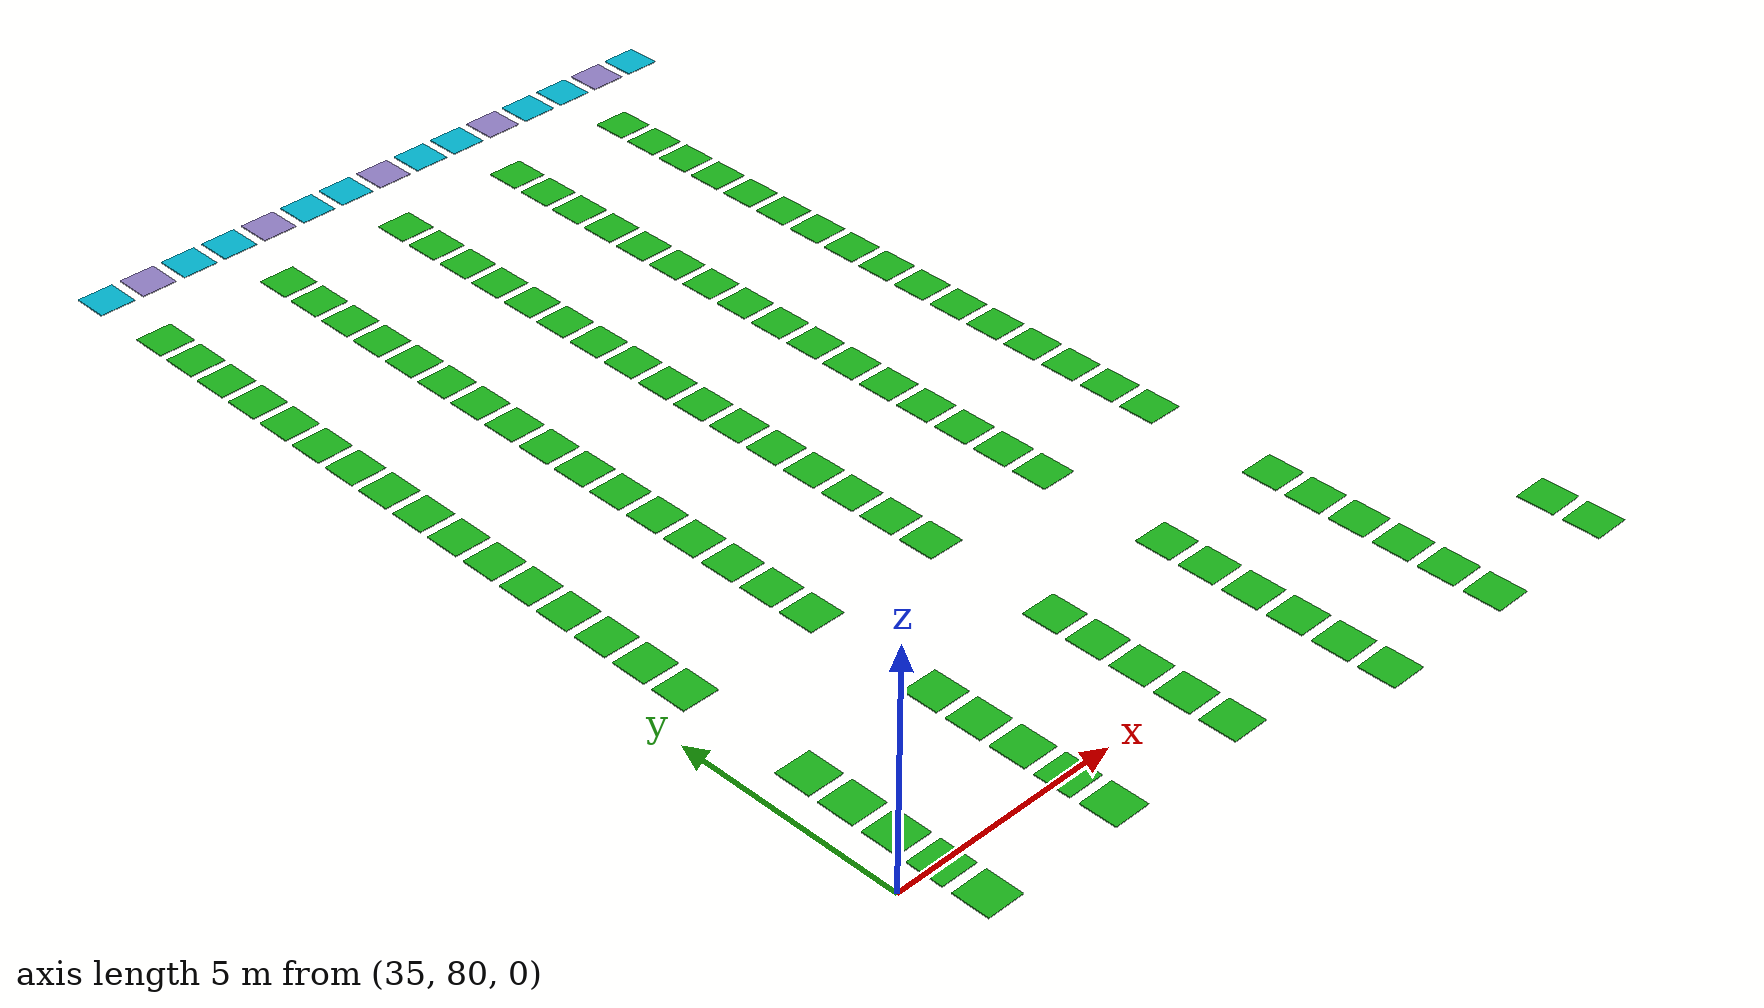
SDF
<sdf version="1.10">
 <world name="my_map">
  <model name="charging_024">
   <static>true</static>
   <pose>36.0
        103.0
        0.02
        0 0 0</pose>
   <link name="link">
    <visual name="visual">
     <geometry><box><size>0.8
                0.8
                0.02</size></box></geometry>
     <material><ambient>0.00 0.70 0.80 1</ambient><diffuse>0.00 0.70 0.80 1</diffuse></material>
    </visual>
   </link>
  </model>
  <model name="charge_queue_012">
   <static>true</static>
   <pose>37.0
        103.0
        0.02
        0 0 0</pose>
   <link name="link">
    <visual name="visual">
     <geometry><box><size>0.8
                0.8
                0.02</size></box></geometry>
     <material><ambient>0.56 0.49 0.76 1</ambient><diffuse>0.56 0.49 0.76 1</diffuse></material>
    </visual>
   </link>
  </model>
  <model name="charging_025">
   <static>true</static>
   <pose>38.0
        103.0
        0.02
        0 0 0</pose>
   <link name="link">
    <visual name="visual">
     <geometry><box><size>0.8
                0.8
                0.02</size></box></geometry>
     <material><ambient>0.00 0.70 0.80 1</ambient><diffuse>0.00 0.70 0.80 1</diffuse></material>
    </visual>
   </link>
  </model>
  <model name="charging_026">
   <static>true</static>
   <pose>39.0
        103.0
        0.02
        0 0 0</pose>
   <link name="link">
    <visual name="visual">
     <geometry><box><size>0.8
                0.8
                0.02</size></box></geometry>
     <material><ambient>0.00 0.70 0.80 1</ambient><diffuse>0.00 0.70 0.80 1</diffuse></material>
    </visual>
   </link>
  </model>
  <model name="charge_queue_013">
   <static>true</static>
   <pose>40.0
        103.0
        0.02
        0 0 0</pose>
   <link name="link">
    <visual name="visual">
     <geometry><box><size>0.8
                0.8
                0.02</size></box></geometry>
     <material><ambient>0.56 0.49 0.76 1</ambient><diffuse>0.56 0.49 0.76 1</diffuse></material>
    </visual>
   </link>
  </model>
  <model name="charging_027">
   <static>true</static>
   <pose>41.0
        103.0
        0.02
        0 0 0</pose>
   <link name="link">
    <visual name="visual">
     <geometry><box><size>0.8
                0.8
                0.02</size></box></geometry>
     <material><ambient>0.00 0.70 0.80 1</ambient><diffuse>0.00 0.70 0.80 1</diffuse></material>
    </visual>
   </link>
  </model>
  <model name="charging_028">
   <static>true</static>
   <pose>42.0
        103.0
        0.02
        0 0 0</pose>
   <link name="link">
    <visual name="visual">
     <geometry><box><size>0.8
                0.8
                0.02</size></box></geometry>
     <material><ambient>0.00 0.70 0.80 1</ambient><diffuse>0.00 0.70 0.80 1</diffuse></material>
    </visual>
   </link>
  </model>
  <model name="charge_queue_014">
   <static>true</static>
   <pose>43.0
        103.0
        0.02
        0 0 0</pose>
   <link name="link">
    <visual name="visual">
     <geometry><box><size>0.8
                0.8
                0.02</size></box></geometry>
     <material><ambient>0.56 0.49 0.76 1</ambient><diffuse>0.56 0.49 0.76 1</diffuse></material>
    </visual>
   </link>
  </model>
  <model name="charging_029">
   <static>true</static>
   <pose>44.0
        103.0
        0.02
        0 0 0</pose>
   <link name="link">
    <visual name="visual">
     <geometry><box><size>0.8
                0.8
                0.02</size></box></geometry>
     <material><ambient>0.00 0.70 0.80 1</ambient><diffuse>0.00 0.70 0.80 1</diffuse></material>
    </visual>
   </link>
  </model>
  <model name="charging_030">
   <static>true</static>
   <pose>45.0
        103.0
        0.02
        0 0 0</pose>
   <link name="link">
    <visual name="visual">
     <geometry><box><size>0.8
                0.8
                0.02</size></box></geometry>
     <material><ambient>0.00 0.70 0.80 1</ambient><diffuse>0.00 0.70 0.80 1</diffuse></material>
    </visual>
   </link>
  </model>
  <model name="charge_queue_015">
   <static>true</static>
   <pose>46.0
        103.0
        0.02
        0 0 0</pose>
   <link name="link">
    <visual name="visual">
     <geometry><box><size>0.8
                0.8
                0.02</size></box></geometry>
     <material><ambient>0.56 0.49 0.76 1</ambient><diffuse>0.56 0.49 0.76 1</diffuse></material>
    </visual>
   </link>
  </model>
  <model name="charging_031">
   <static>true</static>
   <pose>47.0
        103.0
        0.02
        0 0 0</pose>
   <link name="link">
    <visual name="visual">
     <geometry><box><size>0.8
                0.8
                0.02</size></box></geometry>
     <material><ambient>0.00 0.70 0.80 1</ambient><diffuse>0.00 0.70 0.80 1</diffuse></material>
    </visual>
   </link>
  </model>
  <model name="charging_032">
   <static>true</static>
   <pose>48.0
        103.0
        0.02
        0 0 0</pose>
   <link name="link">
    <visual name="visual">
     <geometry><box><size>0.8
                0.8
                0.02</size></box></geometry>
     <material><ambient>0.00 0.70 0.80 1</ambient><diffuse>0.00 0.70 0.80 1</diffuse></material>
    </visual>
   </link>
  </model>
  <model name="charge_queue_016">
   <static>true</static>
   <pose>49.0
        103.0
        0.02
        0 0 0</pose>
   <link name="link">
    <visual name="visual">
     <geometry><box><size>0.8
                0.8
                0.02</size></box></geometry>
     <material><ambient>0.56 0.49 0.76 1</ambient><diffuse>0.56 0.49 0.76 1</diffuse></material>
    </visual>
   </link>
  </model>
  <model name="charging_033">
   <static>true</static>
   <pose>50.0
        103.0
        0.02
        0 0 0</pose>
   <link name="link">
    <visual name="visual">
     <geometry><box><size>0.8
                0.8
                0.02</size></box></geometry>
     <material><ambient>0.00 0.70 0.80 1</ambient><diffuse>0.00 0.70 0.80 1</diffuse></material>
    </visual>
   </link>
  </model>
  <model name="shelf_012">
   <static>true</static>
   <pose>36.0
        101.0
        0.02
        0 0 0</pose>
   <link name="link">
    <visual name="visual">
     <geometry><box><size>0.8
                0.8
                0.02</size></box></geometry>
     <material><ambient>0.10 0.70 0.10 1</ambient><diffuse>0.10 0.70 0.10 1</diffuse></material>
    </visual>
   </link>
  </model>
  <model name="shelf_013">
   <static>true</static>
   <pose>39.0
        101.0
        0.02
        0 0 0</pose>
   <link name="link">
    <visual name="visual">
     <geometry><box><size>0.8
                0.8
                0.02</size></box></geometry>
     <material><ambient>0.10 0.70 0.10 1</ambient><diffuse>0.10 0.70 0.10 1</diffuse></material>
    </visual>
   </link>
  </model>
  <model name="shelf_014">
   <static>true</static>
   <pose>42.0
        101.0
        0.02
        0 0 0</pose>
   <link name="link">
    <visual name="visual">
     <geometry><box><size>0.8
                0.8
                0.02</size></box></geometry>
     <material><ambient>0.10 0.70 0.10 1</ambient><diffuse>0.10 0.70 0.10 1</diffuse></material>
    </visual>
   </link>
  </model>
  <model name="shelf_015">
   <static>true</static>
   <pose>45.0
        101.0
        0.02
        0 0 0</pose>
   <link name="link">
    <visual name="visual">
     <geometry><box><size>0.8
                0.8
                0.02</size></box></geometry>
     <material><ambient>0.10 0.70 0.10 1</ambient><diffuse>0.10 0.70 0.10 1</diffuse></material>
    </visual>
   </link>
  </model>
  <model name="shelf_016">
   <static>true</static>
   <pose>48.0
        101.0
        0.02
        0 0 0</pose>
   <link name="link">
    <visual name="visual">
     <geometry><box><size>0.8
                0.8
                0.02</size></box></geometry>
     <material><ambient>0.10 0.70 0.10 1</ambient><diffuse>0.10 0.70 0.10 1</diffuse></material>
    </visual>
   </link>
  </model>
  <model name="shelf_037">
   <static>true</static>
   <pose>36.0
        100.0
        0.02
        0 0 0</pose>
   <link name="link">
    <visual name="visual">
     <geometry><box><size>0.8
                0.8
                0.02</size></box></geometry>
     <material><ambient>0.10 0.70 0.10 1</ambient><diffuse>0.10 0.70 0.10 1</diffuse></material>
    </visual>
   </link>
  </model>
  <model name="shelf_038">
   <static>true</static>
   <pose>39.0
        100.0
        0.02
        0 0 0</pose>
   <link name="link">
    <visual name="visual">
     <geometry><box><size>0.8
                0.8
                0.02</size></box></geometry>
     <material><ambient>0.10 0.70 0.10 1</ambient><diffuse>0.10 0.70 0.10 1</diffuse></material>
    </visual>
   </link>
  </model>
  <model name="shelf_039">
   <static>true</static>
   <pose>42.0
        100.0
        0.02
        0 0 0</pose>
   <link name="link">
    <visual name="visual">
     <geometry><box><size>0.8
                0.8
                0.02</size></box></geometry>
     <material><ambient>0.10 0.70 0.10 1</ambient><diffuse>0.10 0.70 0.10 1</diffuse></material>
    </visual>
   </link>
  </model>
  <model name="shelf_040">
   <static>true</static>
   <pose>45.0
        100.0
        0.02
        0 0 0</pose>
   <link name="link">
    <visual name="visual">
     <geometry><box><size>0.8
                0.8
                0.02</size></box></geometry>
     <material><ambient>0.10 0.70 0.10 1</ambient><diffuse>0.10 0.70 0.10 1</diffuse></material>
    </visual>
   </link>
  </model>
  <model name="shelf_041">
   <static>true</static>
   <pose>48.0
        100.0
        0.02
        0 0 0</pose>
   <link name="link">
    <visual name="visual">
     <geometry><box><size>0.8
                0.8
                0.02</size></box></geometry>
     <material><ambient>0.10 0.70 0.10 1</ambient><diffuse>0.10 0.70 0.10 1</diffuse></material>
    </visual>
   </link>
  </model>
  <model name="shelf_062">
   <static>true</static>
   <pose>36.0
        99.0
        0.02
        0 0 0</pose>
   <link name="link">
    <visual name="visual">
     <geometry><box><size>0.8
                0.8
                0.02</size></box></geometry>
     <material><ambient>0.10 0.70 0.10 1</ambient><diffuse>0.10 0.70 0.10 1</diffuse></material>
    </visual>
   </link>
  </model>
  <model name="shelf_063">
   <static>true</static>
   <pose>39.0
        99.0
        0.02
        0 0 0</pose>
   <link name="link">
    <visual name="visual">
     <geometry><box><size>0.8
                0.8
                0.02</size></box></geometry>
     <material><ambient>0.10 0.70 0.10 1</ambient><diffuse>0.10 0.70 0.10 1</diffuse></material>
    </visual>
   </link>
  </model>
  <model name="shelf_064">
   <static>true</static>
   <pose>42.0
        99.0
        0.02
        0 0 0</pose>
   <link name="link">
    <visual name="visual">
     <geometry><box><size>0.8
                0.8
                0.02</size></box></geometry>
     <material><ambient>0.10 0.70 0.10 1</ambient><diffuse>0.10 0.70 0.10 1</diffuse></material>
    </visual>
   </link>
  </model>
  <model name="shelf_065">
   <static>true</static>
   <pose>45.0
        99.0
        0.02
        0 0 0</pose>
   <link name="link">
    <visual name="visual">
     <geometry><box><size>0.8
                0.8
                0.02</size></box></geometry>
     <material><ambient>0.10 0.70 0.10 1</ambient><diffuse>0.10 0.70 0.10 1</diffuse></material>
    </visual>
   </link>
  </model>
  <model name="shelf_066">
   <static>true</static>
   <pose>48.0
        99.0
        0.02
        0 0 0</pose>
   <link name="link">
    <visual name="visual">
     <geometry><box><size>0.8
                0.8
                0.02</size></box></geometry>
     <material><ambient>0.10 0.70 0.10 1</ambient><diffuse>0.10 0.70 0.10 1</diffuse></material>
    </visual>
   </link>
  </model>
  <model name="shelf_087">
   <static>true</static>
   <pose>36.0
        98.0
        0.02
        0 0 0</pose>
   <link name="link">
    <visual name="visual">
     <geometry><box><size>0.8
                0.8
                0.02</size></box></geometry>
     <material><ambient>0.10 0.70 0.10 1</ambient><diffuse>0.10 0.70 0.10 1</diffuse></material>
    </visual>
   </link>
  </model>
  <model name="shelf_088">
   <static>true</static>
   <pose>39.0
        98.0
        0.02
        0 0 0</pose>
   <link name="link">
    <visual name="visual">
     <geometry><box><size>0.8
                0.8
                0.02</size></box></geometry>
     <material><ambient>0.10 0.70 0.10 1</ambient><diffuse>0.10 0.70 0.10 1</diffuse></material>
    </visual>
   </link>
  </model>
  <model name="shelf_089">
   <static>true</static>
   <pose>42.0
        98.0
        0.02
        0 0 0</pose>
   <link name="link">
    <visual name="visual">
     <geometry><box><size>0.8
                0.8
                0.02</size></box></geometry>
     <material><ambient>0.10 0.70 0.10 1</ambient><diffuse>0.10 0.70 0.10 1</diffuse></material>
    </visual>
   </link>
  </model>
  <model name="shelf_090">
   <static>true</static>
   <pose>45.0
        98.0
        0.02
        0 0 0</pose>
   <link name="link">
    <visual name="visual">
     <geometry><box><size>0.8
                0.8
                0.02</size></box></geometry>
     <material><ambient>0.10 0.70 0.10 1</ambient><diffuse>0.10 0.70 0.10 1</diffuse></material>
    </visual>
   </link>
  </model>
  <model name="shelf_091">
   <static>true</static>
   <pose>48.0
        98.0
        0.02
        0 0 0</pose>
   <link name="link">
    <visual name="visual">
     <geometry><box><size>0.8
                0.8
                0.02</size></box></geometry>
     <material><ambient>0.10 0.70 0.10 1</ambient><diffuse>0.10 0.70 0.10 1</diffuse></material>
    </visual>
   </link>
  </model>
  <model name="shelf_112">
   <static>true</static>
   <pose>36.0
        97.0
        0.02
        0 0 0</pose>
   <link name="link">
    <visual name="visual">
     <geometry><box><size>0.8
                0.8
                0.02</size></box></geometry>
     <material><ambient>0.10 0.70 0.10 1</ambient><diffuse>0.10 0.70 0.10 1</diffuse></material>
    </visual>
   </link>
  </model>
  <model name="shelf_113">
   <static>true</static>
   <pose>39.0
        97.0
        0.02
        0 0 0</pose>
   <link name="link">
    <visual name="visual">
     <geometry><box><size>0.8
                0.8
                0.02</size></box></geometry>
     <material><ambient>0.10 0.70 0.10 1</ambient><diffuse>0.10 0.70 0.10 1</diffuse></material>
    </visual>
   </link>
  </model>
  <model name="shelf_114">
   <static>true</static>
   <pose>42.0
        97.0
        0.02
        0 0 0</pose>
   <link name="link">
    <visual name="visual">
     <geometry><box><size>0.8
                0.8
                0.02</size></box></geometry>
     <material><ambient>0.10 0.70 0.10 1</ambient><diffuse>0.10 0.70 0.10 1</diffuse></material>
    </visual>
   </link>
  </model>
  <model name="shelf_115">
   <static>true</static>
   <pose>45.0
        97.0
        0.02
        0 0 0</pose>
   <link name="link">
    <visual name="visual">
     <geometry><box><size>0.8
                0.8
                0.02</size></box></geometry>
     <material><ambient>0.10 0.70 0.10 1</ambient><diffuse>0.10 0.70 0.10 1</diffuse></material>
    </visual>
   </link>
  </model>
  <model name="shelf_116">
   <static>true</static>
   <pose>48.0
        97.0
        0.02
        0 0 0</pose>
   <link name="link">
    <visual name="visual">
     <geometry><box><size>0.8
                0.8
                0.02</size></box></geometry>
     <material><ambient>0.10 0.70 0.10 1</ambient><diffuse>0.10 0.70 0.10 1</diffuse></material>
    </visual>
   </link>
  </model>
  <model name="shelf_137">
   <static>true</static>
   <pose>36.0
        96.0
        0.02
        0 0 0</pose>
   <link name="link">
    <visual name="visual">
     <geometry><box><size>0.8
                0.8
                0.02</size></box></geometry>
     <material><ambient>0.10 0.70 0.10 1</ambient><diffuse>0.10 0.70 0.10 1</diffuse></material>
    </visual>
   </link>
  </model>
  <model name="shelf_138">
   <static>true</static>
   <pose>39.0
        96.0
        0.02
        0 0 0</pose>
   <link name="link">
    <visual name="visual">
     <geometry><box><size>0.8
                0.8
                0.02</size></box></geometry>
     <material><ambient>0.10 0.70 0.10 1</ambient><diffuse>0.10 0.70 0.10 1</diffuse></material>
    </visual>
   </link>
  </model>
  <model name="shelf_139">
   <static>true</static>
   <pose>42.0
        96.0
        0.02
        0 0 0</pose>
   <link name="link">
    <visual name="visual">
     <geometry><box><size>0.8
                0.8
                0.02</size></box></geometry>
     <material><ambient>0.10 0.70 0.10 1</ambient><diffuse>0.10 0.70 0.10 1</diffuse></material>
    </visual>
   </link>
  </model>
  <model name="shelf_140">
   <static>true</static>
   <pose>45.0
        96.0
        0.02
        0 0 0</pose>
   <link name="link">
    <visual name="visual">
     <geometry><box><size>0.8
                0.8
                0.02</size></box></geometry>
     <material><ambient>0.10 0.70 0.10 1</ambient><diffuse>0.10 0.70 0.10 1</diffuse></material>
    </visual>
   </link>
  </model>
  <model name="shelf_141">
   <static>true</static>
   <pose>48.0
        96.0
        0.02
        0 0 0</pose>
   <link name="link">
    <visual name="visual">
     <geometry><box><size>0.8
                0.8
                0.02</size></box></geometry>
     <material><ambient>0.10 0.70 0.10 1</ambient><diffuse>0.10 0.70 0.10 1</diffuse></material>
    </visual>
   </link>
  </model>
  <model name="shelf_162">
   <static>true</static>
   <pose>36.0
        95.0
        0.02
        0 0 0</pose>
   <link name="link">
    <visual name="visual">
     <geometry><box><size>0.8
                0.8
                0.02</size></box></geometry>
     <material><ambient>0.10 0.70 0.10 1</ambient><diffuse>0.10 0.70 0.10 1</diffuse></material>
    </visual>
   </link>
  </model>
  <model name="shelf_163">
   <static>true</static>
   <pose>39.0
        95.0
        0.02
        0 0 0</pose>
   <link name="link">
    <visual name="visual">
     <geometry><box><size>0.8
                0.8
                0.02</size></box></geometry>
     <material><ambient>0.10 0.70 0.10 1</ambient><diffuse>0.10 0.70 0.10 1</diffuse></material>
    </visual>
   </link>
  </model>
  <model name="shelf_164">
   <static>true</static>
   <pose>42.0
        95.0
        0.02
        0 0 0</pose>
   <link name="link">
    <visual name="visual">
     <geometry><box><size>0.8
                0.8
                0.02</size></box></geometry>
     <material><ambient>0.10 0.70 0.10 1</ambient><diffuse>0.10 0.70 0.10 1</diffuse></material>
    </visual>
   </link>
  </model>
  <model name="shelf_165">
   <static>true</static>
   <pose>45.0
        95.0
        0.02
        0 0 0</pose>
   <link name="link">
    <visual name="visual">
     <geometry><box><size>0.8
                0.8
                0.02</size></box></geometry>
     <material><ambient>0.10 0.70 0.10 1</ambient><diffuse>0.10 0.70 0.10 1</diffuse></material>
    </visual>
   </link>
  </model>
  <model name="shelf_166">
   <static>true</static>
   <pose>48.0
        95.0
        0.02
        0 0 0</pose>
   <link name="link">
    <visual name="visual">
     <geometry><box><size>0.8
                0.8
                0.02</size></box></geometry>
     <material><ambient>0.10 0.70 0.10 1</ambient><diffuse>0.10 0.70 0.10 1</diffuse></material>
    </visual>
   </link>
  </model>
  <model name="shelf_187">
   <static>true</static>
   <pose>36.0
        94.0
        0.02
        0 0 0</pose>
   <link name="link">
    <visual name="visual">
     <geometry><box><size>0.8
                0.8
                0.02</size></box></geometry>
     <material><ambient>0.10 0.70 0.10 1</ambient><diffuse>0.10 0.70 0.10 1</diffuse></material>
    </visual>
   </link>
  </model>
  <model name="shelf_188">
   <static>true</static>
   <pose>39.0
        94.0
        0.02
        0 0 0</pose>
   <link name="link">
    <visual name="visual">
     <geometry><box><size>0.8
                0.8
                0.02</size></box></geometry>
     <material><ambient>0.10 0.70 0.10 1</ambient><diffuse>0.10 0.70 0.10 1</diffuse></material>
    </visual>
   </link>
  </model>
  <model name="shelf_189">
   <static>true</static>
   <pose>42.0
        94.0
        0.02
        0 0 0</pose>
   <link name="link">
    <visual name="visual">
     <geometry><box><size>0.8
                0.8
                0.02</size></box></geometry>
     <material><ambient>0.10 0.70 0.10 1</ambient><diffuse>0.10 0.70 0.10 1</diffuse></material>
    </visual>
   </link>
  </model>
  <model name="shelf_190">
   <static>true</static>
   <pose>45.0
        94.0
        0.02
        0 0 0</pose>
   <link name="link">
    <visual name="visual">
     <geometry><box><size>0.8
                0.8
                0.02</size></box></geometry>
     <material><ambient>0.10 0.70 0.10 1</ambient><diffuse>0.10 0.70 0.10 1</diffuse></material>
    </visual>
   </link>
  </model>
  <model name="shelf_191">
   <static>true</static>
   <pose>48.0
        94.0
        0.02
        0 0 0</pose>
   <link name="link">
    <visual name="visual">
     <geometry><box><size>0.8
                0.8
                0.02</size></box></geometry>
     <material><ambient>0.10 0.70 0.10 1</ambient><diffuse>0.10 0.70 0.10 1</diffuse></material>
    </visual>
   </link>
  </model>
  <model name="shelf_212">
   <static>true</static>
   <pose>36.0
        93.0
        0.02
        0 0 0</pose>
   <link name="link">
    <visual name="visual">
     <geometry><box><size>0.8
                0.8
                0.02</size></box></geometry>
     <material><ambient>0.10 0.70 0.10 1</ambient><diffuse>0.10 0.70 0.10 1</diffuse></material>
    </visual>
   </link>
  </model>
  <model name="shelf_213">
   <static>true</static>
   <pose>39.0
        93.0
        0.02
        0 0 0</pose>
   <link name="link">
    <visual name="visual">
     <geometry><box><size>0.8
                0.8
                0.02</size></box></geometry>
     <material><ambient>0.10 0.70 0.10 1</ambient><diffuse>0.10 0.70 0.10 1</diffuse></material>
    </visual>
   </link>
  </model>
  <model name="shelf_214">
   <static>true</static>
   <pose>42.0
        93.0
        0.02
        0 0 0</pose>
   <link name="link">
    <visual name="visual">
     <geometry><box><size>0.8
                0.8
                0.02</size></box></geometry>
     <material><ambient>0.10 0.70 0.10 1</ambient><diffuse>0.10 0.70 0.10 1</diffuse></material>
    </visual>
   </link>
  </model>
  <model name="shelf_215">
   <static>true</static>
   <pose>45.0
        93.0
        0.02
        0 0 0</pose>
   <link name="link">
    <visual name="visual">
     <geometry><box><size>0.8
                0.8
                0.02</size></box></geometry>
     <material><ambient>0.10 0.70 0.10 1</ambient><diffuse>0.10 0.70 0.10 1</diffuse></material>
    </visual>
   </link>
  </model>
  <model name="shelf_216">
   <static>true</static>
   <pose>48.0
        93.0
        0.02
        0 0 0</pose>
   <link name="link">
    <visual name="visual">
     <geometry><box><size>0.8
                0.8
                0.02</size></box></geometry>
     <material><ambient>0.10 0.70 0.10 1</ambient><diffuse>0.10 0.70 0.10 1</diffuse></material>
    </visual>
   </link>
  </model>
  <model name="shelf_237">
   <static>true</static>
   <pose>36.0
        92.0
        0.02
        0 0 0</pose>
   <link name="link">
    <visual name="visual">
     <geometry><box><size>0.8
                0.8
                0.02</size></box></geometry>
     <material><ambient>0.10 0.70 0.10 1</ambient><diffuse>0.10 0.70 0.10 1</diffuse></material>
    </visual>
   </link>
  </model>
  <model name="shelf_238">
   <static>true</static>
   <pose>39.0
        92.0
        0.02
        0 0 0</pose>
   <link name="link">
    <visual name="visual">
     <geometry><box><size>0.8
                0.8
                0.02</size></box></geometry>
     <material><ambient>0.10 0.70 0.10 1</ambient><diffuse>0.10 0.70 0.10 1</diffuse></material>
    </visual>
   </link>
  </model>
  <model name="shelf_239">
   <static>true</static>
   <pose>42.0
        92.0
        0.02
        0 0 0</pose>
   <link name="link">
    <visual name="visual">
     <geometry><box><size>0.8
                0.8
                0.02</size></box></geometry>
     <material><ambient>0.10 0.70 0.10 1</ambient><diffuse>0.10 0.70 0.10 1</diffuse></material>
    </visual>
   </link>
  </model>
  <model name="shelf_240">
   <static>true</static>
   <pose>45.0
        92.0
        0.02
        0 0 0</pose>
   <link name="link">
    <visual name="visual">
     <geometry><box><size>0.8
                0.8
                0.02</size></box></geometry>
     <material><ambient>0.10 0.70 0.10 1</ambient><diffuse>0.10 0.70 0.10 1</diffuse></material>
    </visual>
   </link>
  </model>
  <model name="shelf_241">
   <static>true</static>
   <pose>48.0
        92.0
        0.02
        0 0 0</pose>
   <link name="link">
    <visual name="visual">
     <geometry><box><size>0.8
                0.8
                0.02</size></box></geometry>
     <material><ambient>0.10 0.70 0.10 1</ambient><diffuse>0.10 0.70 0.10 1</diffuse></material>
    </visual>
   </link>
  </model>
  <model name="shelf_262">
   <static>true</static>
   <pose>36.0
        91.0
        0.02
        0 0 0</pose>
   <link name="link">
    <visual name="visual">
     <geometry><box><size>0.8
                0.8
                0.02</size></box></geometry>
     <material><ambient>0.10 0.70 0.10 1</ambient><diffuse>0.10 0.70 0.10 1</diffuse></material>
    </visual>
   </link>
  </model>
  <model name="shelf_263">
   <static>true</static>
   <pose>39.0
        91.0
        0.02
        0 0 0</pose>
   <link name="link">
    <visual name="visual">
     <geometry><box><size>0.8
                0.8
                0.02</size></box></geometry>
     <material><ambient>0.10 0.70 0.10 1</ambient><diffuse>0.10 0.70 0.10 1</diffuse></material>
    </visual>
   </link>
  </model>
  <model name="shelf_264">
   <static>true</static>
   <pose>42.0
        91.0
        0.02
        0 0 0</pose>
   <link name="link">
    <visual name="visual">
     <geometry><box><size>0.8
                0.8
                0.02</size></box></geometry>
     <material><ambient>0.10 0.70 0.10 1</ambient><diffuse>0.10 0.70 0.10 1</diffuse></material>
    </visual>
   </link>
  </model>
  <model name="shelf_265">
   <static>true</static>
   <pose>45.0
        91.0
        0.02
        0 0 0</pose>
   <link name="link">
    <visual name="visual">
     <geometry><box><size>0.8
                0.8
                0.02</size></box></geometry>
     <material><ambient>0.10 0.70 0.10 1</ambient><diffuse>0.10 0.70 0.10 1</diffuse></material>
    </visual>
   </link>
  </model>
  <model name="shelf_266">
   <static>true</static>
   <pose>48.0
        91.0
        0.02
        0 0 0</pose>
   <link name="link">
    <visual name="visual">
     <geometry><box><size>0.8
                0.8
                0.02</size></box></geometry>
     <material><ambient>0.10 0.70 0.10 1</ambient><diffuse>0.10 0.70 0.10 1</diffuse></material>
    </visual>
   </link>
  </model>
  <model name="shelf_287">
   <static>true</static>
   <pose>36.0
        90.0
        0.02
        0 0 0</pose>
   <link name="link">
    <visual name="visual">
     <geometry><box><size>0.8
                0.8
                0.02</size></box></geometry>
     <material><ambient>0.10 0.70 0.10 1</ambient><diffuse>0.10 0.70 0.10 1</diffuse></material>
    </visual>
   </link>
  </model>
  <model name="shelf_288">
   <static>true</static>
   <pose>39.0
        90.0
        0.02
        0 0 0</pose>
   <link name="link">
    <visual name="visual">
     <geometry><box><size>0.8
                0.8
                0.02</size></box></geometry>
     <material><ambient>0.10 0.70 0.10 1</ambient><diffuse>0.10 0.70 0.10 1</diffuse></material>
    </visual>
   </link>
  </model>
  <model name="shelf_289">
   <static>true</static>
   <pose>42.0
        90.0
        0.02
        0 0 0</pose>
   <link name="link">
    <visual name="visual">
     <geometry><box><size>0.8
                0.8
                0.02</size></box></geometry>
     <material><ambient>0.10 0.70 0.10 1</ambient><diffuse>0.10 0.70 0.10 1</diffuse></material>
    </visual>
   </link>
  </model>
  <model name="shelf_290">
   <static>true</static>
   <pose>45.0
        90.0
        0.02
        0 0 0</pose>
   <link name="link">
    <visual name="visual">
     <geometry><box><size>0.8
                0.8
                0.02</size></box></geometry>
     <material><ambient>0.10 0.70 0.10 1</ambient><diffuse>0.10 0.70 0.10 1</diffuse></material>
    </visual>
   </link>
  </model>
  <model name="shelf_291">
   <static>true</static>
   <pose>48.0
        90.0
        0.02
        0 0 0</pose>
   <link name="link">
    <visual name="visual">
     <geometry><box><size>0.8
                0.8
                0.02</size></box></geometry>
     <material><ambient>0.10 0.70 0.10 1</ambient><diffuse>0.10 0.70 0.10 1</diffuse></material>
    </visual>
   </link>
  </model>
  <model name="shelf_312">
   <static>true</static>
   <pose>36.0
        89.0
        0.02
        0 0 0</pose>
   <link name="link">
    <visual name="visual">
     <geometry><box><size>0.8
                0.8
                0.02</size></box></geometry>
     <material><ambient>0.10 0.70 0.10 1</ambient><diffuse>0.10 0.70 0.10 1</diffuse></material>
    </visual>
   </link>
  </model>
  <model name="shelf_313">
   <static>true</static>
   <pose>39.0
        89.0
        0.02
        0 0 0</pose>
   <link name="link">
    <visual name="visual">
     <geometry><box><size>0.8
                0.8
                0.02</size></box></geometry>
     <material><ambient>0.10 0.70 0.10 1</ambient><diffuse>0.10 0.70 0.10 1</diffuse></material>
    </visual>
   </link>
  </model>
  <model name="shelf_314">
   <static>true</static>
   <pose>42.0
        89.0
        0.02
        0 0 0</pose>
   <link name="link">
    <visual name="visual">
     <geometry><box><size>0.8
                0.8
                0.02</size></box></geometry>
     <material><ambient>0.10 0.70 0.10 1</ambient><diffuse>0.10 0.70 0.10 1</diffuse></material>
    </visual>
   </link>
  </model>
  <model name="shelf_315">
   <static>true</static>
   <pose>45.0
        89.0
        0.02
        0 0 0</pose>
   <link name="link">
    <visual name="visual">
     <geometry><box><size>0.8
                0.8
                0.02</size></box></geometry>
     <material><ambient>0.10 0.70 0.10 1</ambient><diffuse>0.10 0.70 0.10 1</diffuse></material>
    </visual>
   </link>
  </model>
  <model name="shelf_316">
   <static>true</static>
   <pose>48.0
        89.0
        0.02
        0 0 0</pose>
   <link name="link">
    <visual name="visual">
     <geometry><box><size>0.8
                0.8
                0.02</size></box></geometry>
     <material><ambient>0.10 0.70 0.10 1</ambient><diffuse>0.10 0.70 0.10 1</diffuse></material>
    </visual>
   </link>
  </model>
  <model name="shelf_337">
   <static>true</static>
   <pose>36.0
        88.0
        0.02
        0 0 0</pose>
   <link name="link">
    <visual name="visual">
     <geometry><box><size>0.8
                0.8
                0.02</size></box></geometry>
     <material><ambient>0.10 0.70 0.10 1</ambient><diffuse>0.10 0.70 0.10 1</diffuse></material>
    </visual>
   </link>
  </model>
  <model name="shelf_338">
   <static>true</static>
   <pose>39.0
        88.0
        0.02
        0 0 0</pose>
   <link name="link">
    <visual name="visual">
     <geometry><box><size>0.8
                0.8
                0.02</size></box></geometry>
     <material><ambient>0.10 0.70 0.10 1</ambient><diffuse>0.10 0.70 0.10 1</diffuse></material>
    </visual>
   </link>
  </model>
  <model name="shelf_339">
   <static>true</static>
   <pose>42.0
        88.0
        0.02
        0 0 0</pose>
   <link name="link">
    <visual name="visual">
     <geometry><box><size>0.8
                0.8
                0.02</size></box></geometry>
     <material><ambient>0.10 0.70 0.10 1</ambient><diffuse>0.10 0.70 0.10 1</diffuse></material>
    </visual>
   </link>
  </model>
  <model name="shelf_340">
   <static>true</static>
   <pose>45.0
        88.0
        0.02
        0 0 0</pose>
   <link name="link">
    <visual name="visual">
     <geometry><box><size>0.8
                0.8
                0.02</size></box></geometry>
     <material><ambient>0.10 0.70 0.10 1</ambient><diffuse>0.10 0.70 0.10 1</diffuse></material>
    </visual>
   </link>
  </model>
  <model name="shelf_341">
   <static>true</static>
   <pose>48.0
        88.0
        0.02
        0 0 0</pose>
   <link name="link">
    <visual name="visual">
     <geometry><box><size>0.8
                0.8
                0.02</size></box></geometry>
     <material><ambient>0.10 0.70 0.10 1</ambient><diffuse>0.10 0.70 0.10 1</diffuse></material>
    </visual>
   </link>
  </model>
  <model name="shelf_362">
   <static>true</static>
   <pose>36.0
        87.0
        0.02
        0 0 0</pose>
   <link name="link">
    <visual name="visual">
     <geometry><box><size>0.8
                0.8
                0.02</size></box></geometry>
     <material><ambient>0.10 0.70 0.10 1</ambient><diffuse>0.10 0.70 0.10 1</diffuse></material>
    </visual>
   </link>
  </model>
  <model name="shelf_363">
   <static>true</static>
   <pose>39.0
        87.0
        0.02
        0 0 0</pose>
   <link name="link">
    <visual name="visual">
     <geometry><box><size>0.8
                0.8
                0.02</size></box></geometry>
     <material><ambient>0.10 0.70 0.10 1</ambient><diffuse>0.10 0.70 0.10 1</diffuse></material>
    </visual>
   </link>
  </model>
  <model name="shelf_364">
   <static>true</static>
   <pose>42.0
        87.0
        0.02
        0 0 0</pose>
   <link name="link">
    <visual name="visual">
     <geometry><box><size>0.8
                0.8
                0.02</size></box></geometry>
     <material><ambient>0.10 0.70 0.10 1</ambient><diffuse>0.10 0.70 0.10 1</diffuse></material>
    </visual>
   </link>
  </model>
  <model name="shelf_365">
   <static>true</static>
   <pose>45.0
        87.0
        0.02
        0 0 0</pose>
   <link name="link">
    <visual name="visual">
     <geometry><box><size>0.8
                0.8
                0.02</size></box></geometry>
     <material><ambient>0.10 0.70 0.10 1</ambient><diffuse>0.10 0.70 0.10 1</diffuse></material>
    </visual>
   </link>
  </model>
  <model name="shelf_366">
   <static>true</static>
   <pose>48.0
        87.0
        0.02
        0 0 0</pose>
   <link name="link">
    <visual name="visual">
     <geometry><box><size>0.8
                0.8
                0.02</size></box></geometry>
     <material><ambient>0.10 0.70 0.10 1</ambient><diffuse>0.10 0.70 0.10 1</diffuse></material>
    </visual>
   </link>
  </model>
  <model name="shelf_387">
   <static>true</static>
   <pose>36.0
        86.0
        0.02
        0 0 0</pose>
   <link name="link">
    <visual name="visual">
     <geometry><box><size>0.8
                0.8
                0.02</size></box></geometry>
     <material><ambient>0.10 0.70 0.10 1</ambient><diffuse>0.10 0.70 0.10 1</diffuse></material>
    </visual>
   </link>
  </model>
  <model name="shelf_388">
   <static>true</static>
   <pose>39.0
        86.0
        0.02
        0 0 0</pose>
   <link name="link">
    <visual name="visual">
     <geometry><box><size>0.8
                0.8
                0.02</size></box></geometry>
     <material><ambient>0.10 0.70 0.10 1</ambient><diffuse>0.10 0.70 0.10 1</diffuse></material>
    </visual>
   </link>
  </model>
  <model name="shelf_389">
   <static>true</static>
   <pose>42.0
        86.0
        0.02
        0 0 0</pose>
   <link name="link">
    <visual name="visual">
     <geometry><box><size>0.8
                0.8
                0.02</size></box></geometry>
     <material><ambient>0.10 0.70 0.10 1</ambient><diffuse>0.10 0.70 0.10 1</diffuse></material>
    </visual>
   </link>
  </model>
  <model name="shelf_390">
   <static>true</static>
   <pose>45.0
        86.0
        0.02
        0 0 0</pose>
   <link name="link">
    <visual name="visual">
     <geometry><box><size>0.8
                0.8
                0.02</size></box></geometry>
     <material><ambient>0.10 0.70 0.10 1</ambient><diffuse>0.10 0.70 0.10 1</diffuse></material>
    </visual>
   </link>
  </model>
  <model name="shelf_391">
   <static>true</static>
   <pose>48.0
        86.0
        0.02
        0 0 0</pose>
   <link name="link">
    <visual name="visual">
     <geometry><box><size>0.8
                0.8
                0.02</size></box></geometry>
     <material><ambient>0.10 0.70 0.10 1</ambient><diffuse>0.10 0.70 0.10 1</diffuse></material>
    </visual>
   </link>
  </model>
  <model name="shelf_412">
   <static>true</static>
   <pose>36.0
        83.0
        0.02
        0 0 0</pose>
   <link name="link">
    <visual name="visual">
     <geometry><box><size>0.8
                0.8
                0.02</size></box></geometry>
     <material><ambient>0.10 0.70 0.10 1</ambient><diffuse>0.10 0.70 0.10 1</diffuse></material>
    </visual>
   </link>
  </model>
  <model name="shelf_413">
   <static>true</static>
   <pose>39.0
        83.0
        0.02
        0 0 0</pose>
   <link name="link">
    <visual name="visual">
     <geometry><box><size>0.8
                0.8
                0.02</size></box></geometry>
     <material><ambient>0.10 0.70 0.10 1</ambient><diffuse>0.10 0.70 0.10 1</diffuse></material>
    </visual>
   </link>
  </model>
  <model name="shelf_414">
   <static>true</static>
   <pose>42.0
        83.0
        0.02
        0 0 0</pose>
   <link name="link">
    <visual name="visual">
     <geometry><box><size>0.8
                0.8
                0.02</size></box></geometry>
     <material><ambient>0.10 0.70 0.10 1</ambient><diffuse>0.10 0.70 0.10 1</diffuse></material>
    </visual>
   </link>
  </model>
  <model name="shelf_415">
   <static>true</static>
   <pose>45.0
        83.0
        0.02
        0 0 0</pose>
   <link name="link">
    <visual name="visual">
     <geometry><box><size>0.8
                0.8
                0.02</size></box></geometry>
     <material><ambient>0.10 0.70 0.10 1</ambient><diffuse>0.10 0.70 0.10 1</diffuse></material>
    </visual>
   </link>
  </model>
  <model name="shelf_416">
   <static>true</static>
   <pose>48.0
        83.0
        0.02
        0 0 0</pose>
   <link name="link">
    <visual name="visual">
     <geometry><box><size>0.8
                0.8
                0.02</size></box></geometry>
     <material><ambient>0.10 0.70 0.10 1</ambient><diffuse>0.10 0.70 0.10 1</diffuse></material>
    </visual>
   </link>
  </model>
  <model name="shelf_437">
   <static>true</static>
   <pose>36.0
        82.0
        0.02
        0 0 0</pose>
   <link name="link">
    <visual name="visual">
     <geometry><box><size>0.8
                0.8
                0.02</size></box></geometry>
     <material><ambient>0.10 0.70 0.10 1</ambient><diffuse>0.10 0.70 0.10 1</diffuse></material>
    </visual>
   </link>
  </model>
  <model name="shelf_438">
   <static>true</static>
   <pose>39.0
        82.0
        0.02
        0 0 0</pose>
   <link name="link">
    <visual name="visual">
     <geometry><box><size>0.8
                0.8
                0.02</size></box></geometry>
     <material><ambient>0.10 0.70 0.10 1</ambient><diffuse>0.10 0.70 0.10 1</diffuse></material>
    </visual>
   </link>
  </model>
  <model name="shelf_439">
   <static>true</static>
   <pose>42.0
        82.0
        0.02
        0 0 0</pose>
   <link name="link">
    <visual name="visual">
     <geometry><box><size>0.8
                0.8
                0.02</size></box></geometry>
     <material><ambient>0.10 0.70 0.10 1</ambient><diffuse>0.10 0.70 0.10 1</diffuse></material>
    </visual>
   </link>
  </model>
  <model name="shelf_440">
   <static>true</static>
   <pose>45.0
        82.0
        0.02
        0 0 0</pose>
   <link name="link">
    <visual name="visual">
     <geometry><box><size>0.8
                0.8
                0.02</size></box></geometry>
     <material><ambient>0.10 0.70 0.10 1</ambient><diffuse>0.10 0.70 0.10 1</diffuse></material>
    </visual>
   </link>
  </model>
  <model name="shelf_441">
   <static>true</static>
   <pose>48.0
        82.0
        0.02
        0 0 0</pose>
   <link name="link">
    <visual name="visual">
     <geometry><box><size>0.8
                0.8
                0.02</size></box></geometry>
     <material><ambient>0.10 0.70 0.10 1</ambient><diffuse>0.10 0.70 0.10 1</diffuse></material>
    </visual>
   </link>
  </model>
  <model name="shelf_462">
   <static>true</static>
   <pose>36.0
        81.0
        0.02
        0 0 0</pose>
   <link name="link">
    <visual name="visual">
     <geometry><box><size>0.8
                0.8
                0.02</size></box></geometry>
     <material><ambient>0.10 0.70 0.10 1</ambient><diffuse>0.10 0.70 0.10 1</diffuse></material>
    </visual>
   </link>
  </model>
  <model name="shelf_463">
   <static>true</static>
   <pose>39.0
        81.0
        0.02
        0 0 0</pose>
   <link name="link">
    <visual name="visual">
     <geometry><box><size>0.8
                0.8
                0.02</size></box></geometry>
     <material><ambient>0.10 0.70 0.10 1</ambient><diffuse>0.10 0.70 0.10 1</diffuse></material>
    </visual>
   </link>
  </model>
  <model name="shelf_464">
   <static>true</static>
   <pose>42.0
        81.0
        0.02
        0 0 0</pose>
   <link name="link">
    <visual name="visual">
     <geometry><box><size>0.8
                0.8
                0.02</size></box></geometry>
     <material><ambient>0.10 0.70 0.10 1</ambient><diffuse>0.10 0.70 0.10 1</diffuse></material>
    </visual>
   </link>
  </model>
  <model name="shelf_465">
   <static>true</static>
   <pose>45.0
        81.0
        0.02
        0 0 0</pose>
   <link name="link">
    <visual name="visual">
     <geometry><box><size>0.8
                0.8
                0.02</size></box></geometry>
     <material><ambient>0.10 0.70 0.10 1</ambient><diffuse>0.10 0.70 0.10 1</diffuse></material>
    </visual>
   </link>
  </model>
  <model name="shelf_466">
   <static>true</static>
   <pose>48.0
        81.0
        0.02
        0 0 0</pose>
   <link name="link">
    <visual name="visual">
     <geometry><box><size>0.8
                0.8
                0.02</size></box></geometry>
     <material><ambient>0.10 0.70 0.10 1</ambient><diffuse>0.10 0.70 0.10 1</diffuse></material>
    </visual>
   </link>
  </model>
  <model name="shelf_487">
   <static>true</static>
   <pose>36.0
        80.0
        0.02
        0 0 0</pose>
   <link name="link">
    <visual name="visual">
     <geometry><box><size>0.8
                0.8
                0.02</size></box></geometry>
     <material><ambient>0.10 0.70 0.10 1</ambient><diffuse>0.10 0.70 0.10 1</diffuse></material>
    </visual>
   </link>
  </model>
  <model name="shelf_488">
   <static>true</static>
   <pose>39.0
        80.0
        0.02
        0 0 0</pose>
   <link name="link">
    <visual name="visual">
     <geometry><box><size>0.8
                0.8
                0.02</size></box></geometry>
     <material><ambient>0.10 0.70 0.10 1</ambient><diffuse>0.10 0.70 0.10 1</diffuse></material>
    </visual>
   </link>
  </model>
  <model name="shelf_489">
   <static>true</static>
   <pose>42.0
        80.0
        0.02
        0 0 0</pose>
   <link name="link">
    <visual name="visual">
     <geometry><box><size>0.8
                0.8
                0.02</size></box></geometry>
     <material><ambient>0.10 0.70 0.10 1</ambient><diffuse>0.10 0.70 0.10 1</diffuse></material>
    </visual>
   </link>
  </model>
  <model name="shelf_490">
   <static>true</static>
   <pose>45.0
        80.0
        0.02
        0 0 0</pose>
   <link name="link">
    <visual name="visual">
     <geometry><box><size>0.8
                0.8
                0.02</size></box></geometry>
     <material><ambient>0.10 0.70 0.10 1</ambient><diffuse>0.10 0.70 0.10 1</diffuse></material>
    </visual>
   </link>
  </model>
  <model name="shelf_491">
   <static>true</static>
   <pose>48.0
        80.0
        0.02
        0 0 0</pose>
   <link name="link">
    <visual name="visual">
     <geometry><box><size>0.8
                0.8
                0.02</size></box></geometry>
     <material><ambient>0.10 0.70 0.10 1</ambient><diffuse>0.10 0.70 0.10 1</diffuse></material>
    </visual>
   </link>
  </model>
  <model name="shelf_512">
   <static>true</static>
   <pose>36.0
        79.0
        0.02
        0 0 0</pose>
   <link name="link">
    <visual name="visual">
     <geometry><box><size>0.8
                0.8
                0.02</size></box></geometry>
     <material><ambient>0.10 0.70 0.10 1</ambient><diffuse>0.10 0.70 0.10 1</diffuse></material>
    </visual>
   </link>
  </model>
  <model name="shelf_513">
   <static>true</static>
   <pose>39.0
        79.0
        0.02
        0 0 0</pose>
   <link name="link">
    <visual name="visual">
     <geometry><box><size>0.8
                0.8
                0.02</size></box></geometry>
     <material><ambient>0.10 0.70 0.10 1</ambient><diffuse>0.10 0.70 0.10 1</diffuse></material>
    </visual>
   </link>
  </model>
  <model name="shelf_514">
   <static>true</static>
   <pose>42.0
        79.0
        0.02
        0 0 0</pose>
   <link name="link">
    <visual name="visual">
     <geometry><box><size>0.8
                0.8
                0.02</size></box></geometry>
     <material><ambient>0.10 0.70 0.10 1</ambient><diffuse>0.10 0.70 0.10 1</diffuse></material>
    </visual>
   </link>
  </model>
  <model name="shelf_515">
   <static>true</static>
   <pose>45.0
        79.0
        0.02
        0 0 0</pose>
   <link name="link">
    <visual name="visual">
     <geometry><box><size>0.8
                0.8
                0.02</size></box></geometry>
     <material><ambient>0.10 0.70 0.10 1</ambient><diffuse>0.10 0.70 0.10 1</diffuse></material>
    </visual>
   </link>
  </model>
  <model name="shelf_516">
   <static>true</static>
   <pose>48.0
        79.0
        0.02
        0 0 0</pose>
   <link name="link">
    <visual name="visual">
     <geometry><box><size>0.8
                0.8
                0.02</size></box></geometry>
     <material><ambient>0.10 0.70 0.10 1</ambient><diffuse>0.10 0.70 0.10 1</diffuse></material>
    </visual>
   </link>
  </model>
  <model name="shelf_517">
   <static>true</static>
   <pose>51.0
        79.0
        0.02
        0 0 0</pose>
   <link name="link">
    <visual name="visual">
     <geometry><box><size>0.8
                0.8
                0.02</size></box></geometry>
     <material><ambient>0.10 0.70 0.10 1</ambient><diffuse>0.10 0.70 0.10 1</diffuse></material>
    </visual>
   </link>
  </model>
  <model name="shelf_540">
   <static>true</static>
   <pose>45.0
        78.0
        0.02
        0 0 0</pose>
   <link name="link">
    <visual name="visual">
     <geometry><box><size>0.8
                0.8
                0.02</size></box></geometry>
     <material><ambient>0.10 0.70 0.10 1</ambient><diffuse>0.10 0.70 0.10 1</diffuse></material>
    </visual>
   </link>
  </model>
  <model name="shelf_541">
   <static>true</static>
   <pose>48.0
        78.0
        0.02
        0 0 0</pose>
   <link name="link">
    <visual name="visual">
     <geometry><box><size>0.8
                0.8
                0.02</size></box></geometry>
     <material><ambient>0.10 0.70 0.10 1</ambient><diffuse>0.10 0.70 0.10 1</diffuse></material>
    </visual>
   </link>
  </model>
  <model name="shelf_542">
   <static>true</static>
   <pose>51.0
        78.0
        0.02
        0 0 0</pose>
   <link name="link">
    <visual name="visual">
     <geometry><box><size>0.8
                0.8
                0.02</size></box></geometry>
     <material><ambient>0.10 0.70 0.10 1</ambient><diffuse>0.10 0.70 0.10 1</diffuse></material>
    </visual>
   </link>
  </model>
 </world>
</sdf>
